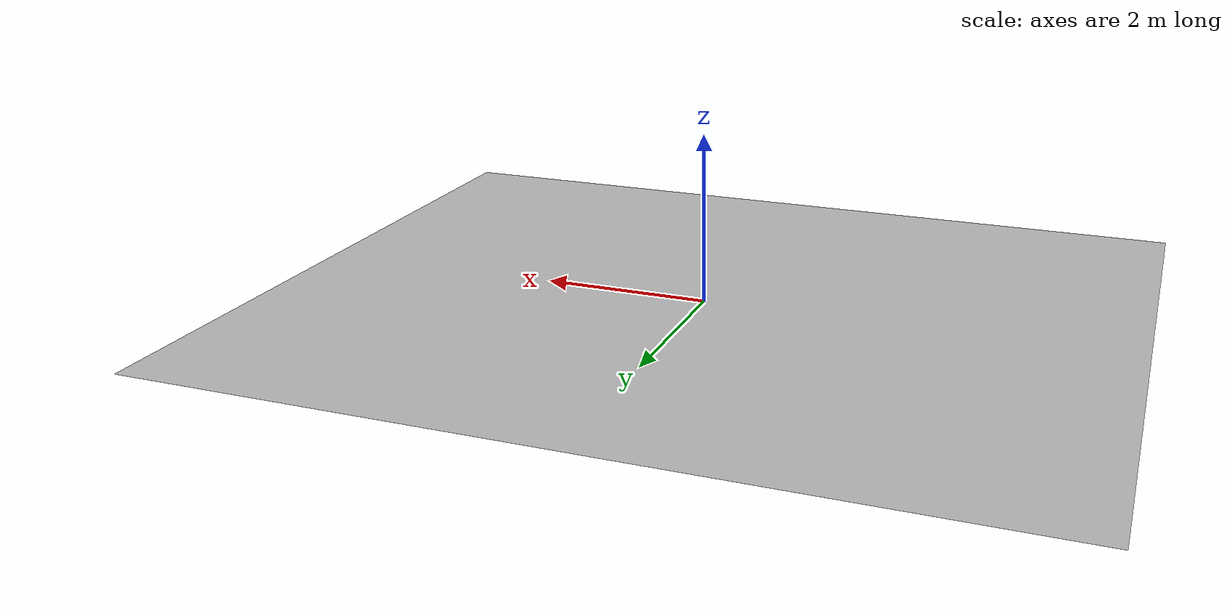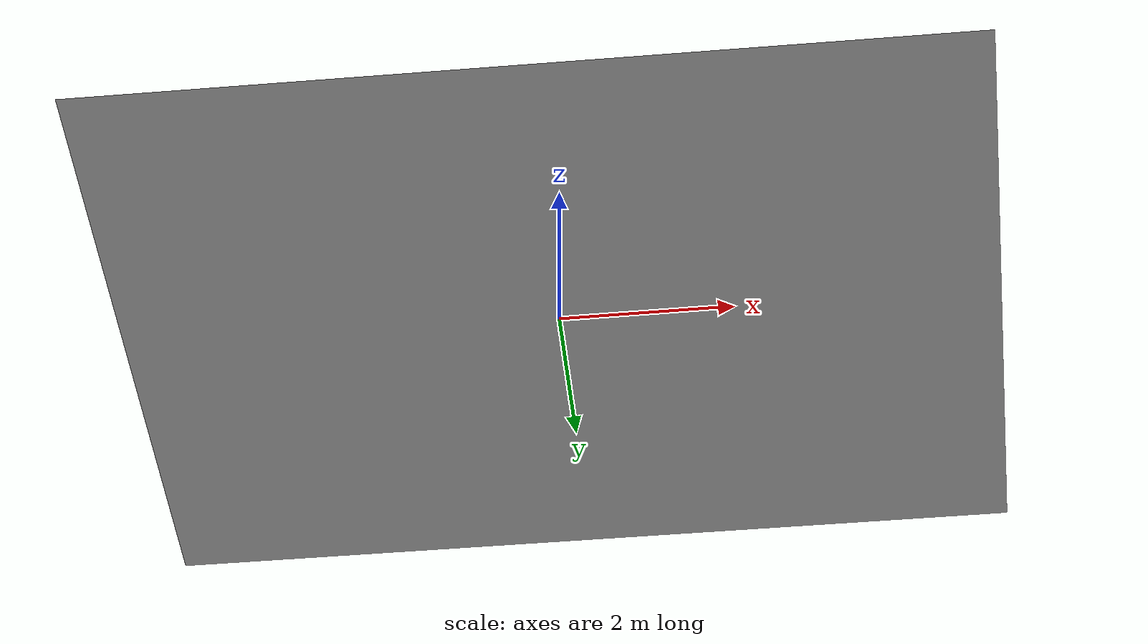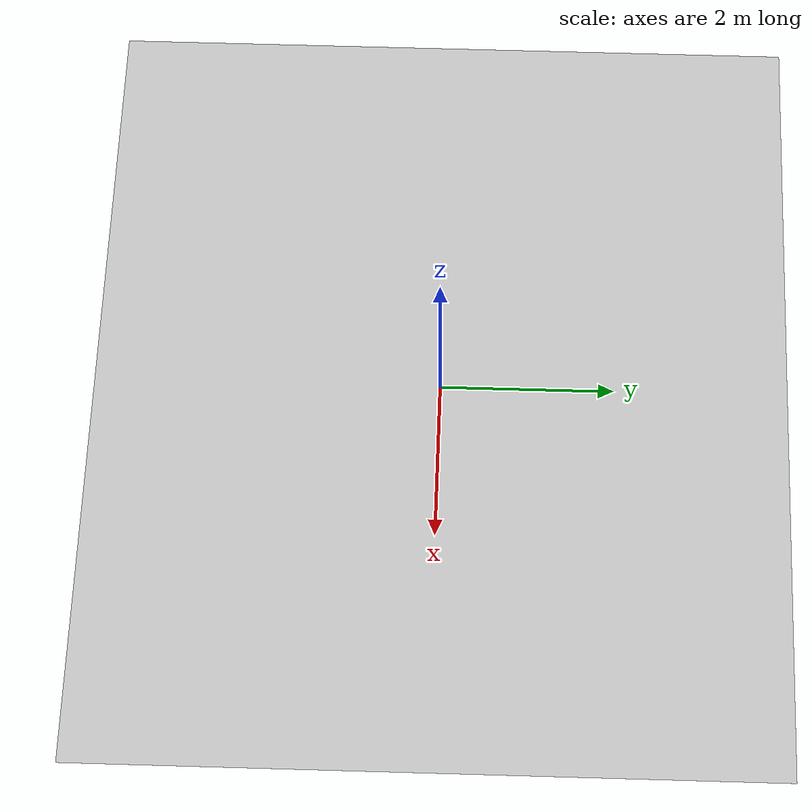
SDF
<?xml version="1.0"?>
<sdf version="1.6">
  <model name="drone_field">
    <pose>0 0 0.01 0 0 0</pose>
    <static>true</static>
    <link name="link">

      <!-- Visualización del modelo -->
      <visual name="visual">
        <geometry>
          <mesh>
            <uri>model://drone_field/meshes/drone_field.dae</uri>
            <scale>1 1 1</scale>
          </mesh>
        </geometry>
      </visual>

      <!-- Colisión usando el mismo modelo DAE -->

    </link>
  </model>
</sdf>
